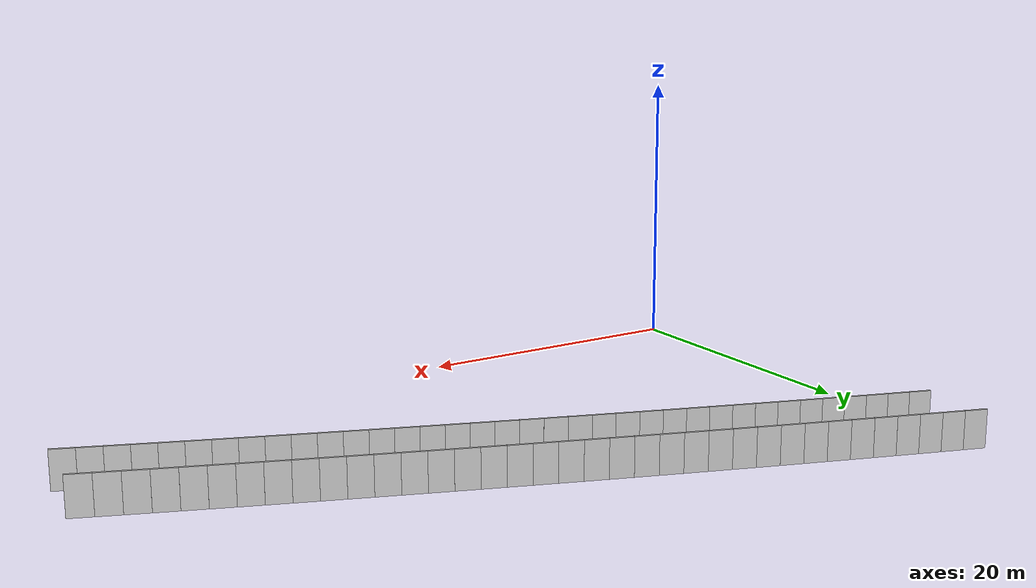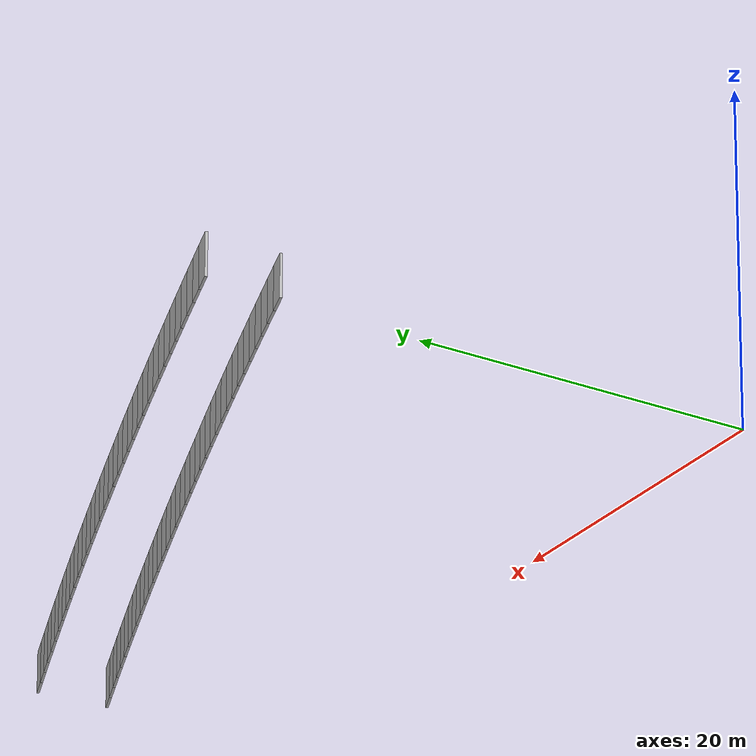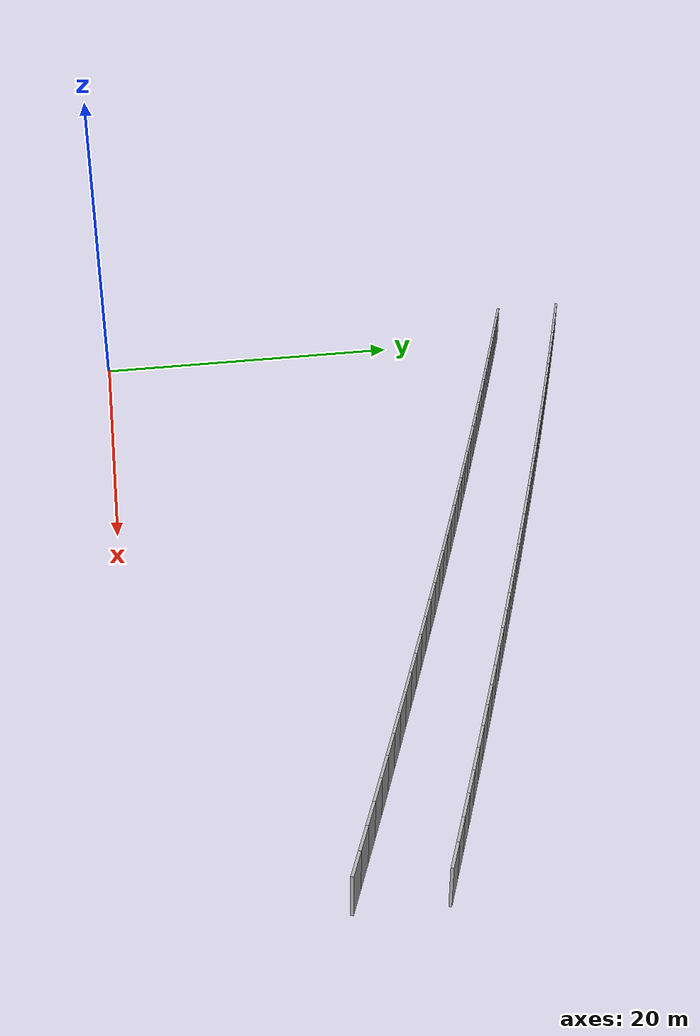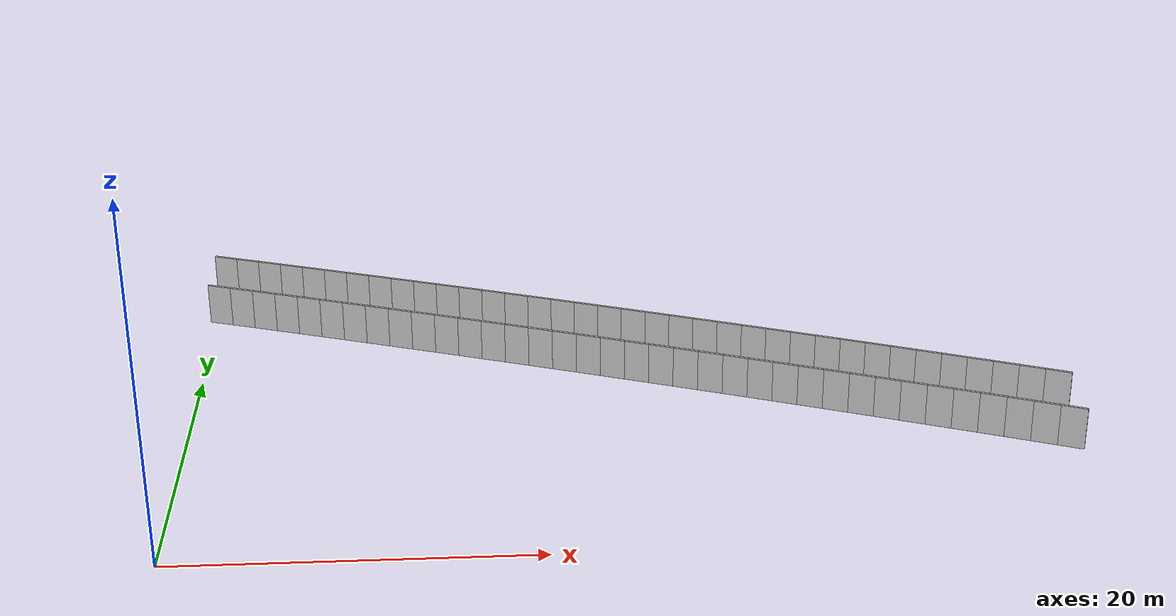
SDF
<?xml version="1.0" ?>
<sdf version="1.6">
  <model name="sps_3345">
    <pose frame="">0 0 0 0 -0 0</pose>
    <static>1</static>
    <self_collide>0</self_collide>
    <allow_auto_disable>0</allow_auto_disable>
    <link name="Wall10667">
      <kinematic>0</kinematic>
      <gravity>1</gravity>
      <self_collide>0</self_collide>
      <collision name="collision">
        <geometry>
          <box>
            <size>1.49636 0.15 2.5</size>
          </box>
        </geometry>
        <pose frame="">0 0 0 0 -0 0</pose>
      </collision>
      <visual name="visual">
        <geometry>
          <box>
            <size>1.49636 0.15 2.5</size>
          </box>
        </geometry>
        <pose frame="">0 0 0 0 -0 0</pose>
        <cast_shadows>1</cast_shadows>
        <transparency>0.0</transparency>
      </visual>
      <pose frame="">49.1837 9.71098 1.25 0 -0 2.75123</pose>
    </link>
    <link name="Wall10668">
      <kinematic>0</kinematic>
      <gravity>1</gravity>
      <self_collide>0</self_collide>
      <collision name="collision">
        <geometry>
          <box>
            <size>1.49665 0.15 2.5</size>
          </box>
        </geometry>
        <pose frame="">0 0 0 0 -0 0</pose>
      </collision>
      <visual name="visual">
        <geometry>
          <box>
            <size>1.49665 0.15 2.5</size>
          </box>
        </geometry>
        <pose frame="">0 0 0 0 -0 0</pose>
        <cast_shadows>1</cast_shadows>
        <transparency>0.0</transparency>
      </visual>
      <pose frame="">47.7993 10.2793 1.25 0 -0 2.7529</pose>
    </link>
    <link name="Wall10669">
      <kinematic>0</kinematic>
      <gravity>1</gravity>
      <self_collide>0</self_collide>
      <collision name="collision">
        <geometry>
          <box>
            <size>1.49656 0.15 2.5</size>
          </box>
        </geometry>
        <pose frame="">0 0 0 0 -0 0</pose>
      </collision>
      <visual name="visual">
        <geometry>
          <box>
            <size>1.49656 0.15 2.5</size>
          </box>
        </geometry>
        <pose frame="">0 0 0 0 -0 0</pose>
        <cast_shadows>1</cast_shadows>
        <transparency>0.0</transparency>
      </visual>
      <pose frame="">46.4139 10.8454 1.25 0 -0 2.75446</pose>
    </link>
    <link name="Wall10670">
      <kinematic>0</kinematic>
      <gravity>1</gravity>
      <self_collide>0</self_collide>
      <collision name="collision">
        <geometry>
          <box>
            <size>1.49653 0.15 2.5</size>
          </box>
        </geometry>
        <pose frame="">0 0 0 0 -0 0</pose>
      </collision>
      <visual name="visual">
        <geometry>
          <box>
            <size>1.49653 0.15 2.5</size>
          </box>
        </geometry>
        <pose frame="">0 0 0 0 -0 0</pose>
        <cast_shadows>1</cast_shadows>
        <transparency>0.0</transparency>
      </visual>
      <pose frame="">45.0277 11.4094 1.25 0 -0 2.75591</pose>
    </link>
    <link name="Wall10671">
      <kinematic>0</kinematic>
      <gravity>1</gravity>
      <self_collide>0</self_collide>
      <collision name="collision">
        <geometry>
          <box>
            <size>1.49637 0.15 2.5</size>
          </box>
        </geometry>
        <pose frame="">0 0 0 0 -0 0</pose>
      </collision>
      <visual name="visual">
        <geometry>
          <box>
            <size>1.49637 0.15 2.5</size>
          </box>
        </geometry>
        <pose frame="">0 0 0 0 -0 0</pose>
        <cast_shadows>1</cast_shadows>
        <transparency>0.0</transparency>
      </visual>
      <pose frame="">43.6407 11.9712 1.25 0 -0 2.75758</pose>
    </link>
    <link name="Wall10672">
      <kinematic>0</kinematic>
      <gravity>1</gravity>
      <self_collide>0</self_collide>
      <collision name="collision">
        <geometry>
          <box>
            <size>1.49668 0.15 2.5</size>
          </box>
        </geometry>
        <pose frame="">0 0 0 0 -0 0</pose>
      </collision>
      <visual name="visual">
        <geometry>
          <box>
            <size>1.49668 0.15 2.5</size>
          </box>
        </geometry>
        <pose frame="">0 0 0 0 -0 0</pose>
        <cast_shadows>1</cast_shadows>
        <transparency>0.0</transparency>
      </visual>
      <pose frame="">42.2527 12.5307 1.25 0 -0 2.75925</pose>
    </link>
    <link name="Wall10673">
      <kinematic>0</kinematic>
      <gravity>1</gravity>
      <self_collide>0</self_collide>
      <collision name="collision">
        <geometry>
          <box>
            <size>1.49638 0.15 2.5</size>
          </box>
        </geometry>
        <pose frame="">0 0 0 0 -0 0</pose>
      </collision>
      <visual name="visual">
        <geometry>
          <box>
            <size>1.49638 0.15 2.5</size>
          </box>
        </geometry>
        <pose frame="">0 0 0 0 -0 0</pose>
        <cast_shadows>1</cast_shadows>
        <transparency>0.0</transparency>
      </visual>
      <pose frame="">40.8639 13.088 1.25 0 -0 2.76075</pose>
    </link>
    <link name="Wall10674">
      <kinematic>0</kinematic>
      <gravity>1</gravity>
      <self_collide>0</self_collide>
      <collision name="collision">
        <geometry>
          <box>
            <size>1.49652 0.15 2.5</size>
          </box>
        </geometry>
        <pose frame="">0 0 0 0 -0 0</pose>
      </collision>
      <visual name="visual">
        <geometry>
          <box>
            <size>1.49652 0.15 2.5</size>
          </box>
        </geometry>
        <pose frame="">0 0 0 0 -0 0</pose>
        <cast_shadows>1</cast_shadows>
        <transparency>0.0</transparency>
      </visual>
      <pose frame="">39.4742 13.6431 1.25 0 -0 2.76237</pose>
    </link>
    <link name="Wall10675">
      <kinematic>0</kinematic>
      <gravity>1</gravity>
      <self_collide>0</self_collide>
      <collision name="collision">
        <geometry>
          <box>
            <size>1.49652 0.15 2.5</size>
          </box>
        </geometry>
        <pose frame="">0 0 0 0 -0 0</pose>
      </collision>
      <visual name="visual">
        <geometry>
          <box>
            <size>1.49652 0.15 2.5</size>
          </box>
        </geometry>
        <pose frame="">0 0 0 0 -0 0</pose>
        <cast_shadows>1</cast_shadows>
        <transparency>0.0</transparency>
      </visual>
      <pose frame="">38.0836 14.1961 1.25 0 -0 2.76381</pose>
    </link>
    <link name="Wall10676">
      <kinematic>0</kinematic>
      <gravity>1</gravity>
      <self_collide>0</self_collide>
      <collision name="collision">
        <geometry>
          <box>
            <size>1.49641 0.15 2.5</size>
          </box>
        </geometry>
        <pose frame="">0 0 0 0 -0 0</pose>
      </collision>
      <visual name="visual">
        <geometry>
          <box>
            <size>1.49641 0.15 2.5</size>
          </box>
        </geometry>
        <pose frame="">0 0 0 0 -0 0</pose>
        <cast_shadows>1</cast_shadows>
        <transparency>0.0</transparency>
      </visual>
      <pose frame="">36.6922 14.7469 1.25 0 -0 2.76554</pose>
    </link>
    <link name="Wall10677">
      <kinematic>0</kinematic>
      <gravity>1</gravity>
      <self_collide>0</self_collide>
      <collision name="collision">
        <geometry>
          <box>
            <size>1.49678 0.15 2.5</size>
          </box>
        </geometry>
        <pose frame="">0 0 0 0 -0 0</pose>
      </collision>
      <visual name="visual">
        <geometry>
          <box>
            <size>1.49678 0.15 2.5</size>
          </box>
        </geometry>
        <pose frame="">0 0 0 0 -0 0</pose>
        <cast_shadows>1</cast_shadows>
        <transparency>0.0</transparency>
      </visual>
      <pose frame="">35.2997 15.2955 1.25 0 -0 2.76704</pose>
    </link>
    <link name="Wall10678">
      <kinematic>0</kinematic>
      <gravity>1</gravity>
      <self_collide>0</self_collide>
      <collision name="collision">
        <geometry>
          <box>
            <size>1.49642 0.15 2.5</size>
          </box>
        </geometry>
        <pose frame="">0 0 0 0 -0 0</pose>
      </collision>
      <visual name="visual">
        <geometry>
          <box>
            <size>1.49642 0.15 2.5</size>
          </box>
        </geometry>
        <pose frame="">0 0 0 0 -0 0</pose>
        <cast_shadows>1</cast_shadows>
        <transparency>0.0</transparency>
      </visual>
      <pose frame="">33.9065 15.8419 1.25 0 -0 2.76865</pose>
    </link>
    <link name="Wall10679">
      <kinematic>0</kinematic>
      <gravity>1</gravity>
      <self_collide>0</self_collide>
      <collision name="collision">
        <geometry>
          <box>
            <size>1.49663 0.15 2.5</size>
          </box>
        </geometry>
        <pose frame="">0 0 0 0 -0 0</pose>
      </collision>
      <visual name="visual">
        <geometry>
          <box>
            <size>1.49663 0.15 2.5</size>
          </box>
        </geometry>
        <pose frame="">0 0 0 0 -0 0</pose>
        <cast_shadows>1</cast_shadows>
        <transparency>0.0</transparency>
      </visual>
      <pose frame="">32.5124 16.3861 1.25 0 -0 2.7702</pose>
    </link>
    <link name="Wall10680">
      <kinematic>0</kinematic>
      <gravity>1</gravity>
      <self_collide>0</self_collide>
      <collision name="collision">
        <geometry>
          <box>
            <size>1.49659 0.15 2.5</size>
          </box>
        </geometry>
        <pose frame="">0 0 0 0 -0 0</pose>
      </collision>
      <visual name="visual">
        <geometry>
          <box>
            <size>1.49659 0.15 2.5</size>
          </box>
        </geometry>
        <pose frame="">0 0 0 0 -0 0</pose>
        <cast_shadows>1</cast_shadows>
        <transparency>0.0</transparency>
      </visual>
      <pose frame="">31.1174 16.9281 1.25 0 -0 2.77185</pose>
    </link>
    <link name="Wall10681">
      <kinematic>0</kinematic>
      <gravity>1</gravity>
      <self_collide>0</self_collide>
      <collision name="collision">
        <geometry>
          <box>
            <size>1.49628 0.15 2.5</size>
          </box>
        </geometry>
        <pose frame="">0 0 0 0 -0 0</pose>
      </collision>
      <visual name="visual">
        <geometry>
          <box>
            <size>1.49628 0.15 2.5</size>
          </box>
        </geometry>
        <pose frame="">0 0 0 0 -0 0</pose>
        <cast_shadows>1</cast_shadows>
        <transparency>0.0</transparency>
      </visual>
      <pose frame="">29.7216 17.4678 1.25 0 -0 2.77339</pose>
    </link>
    <link name="Wall10682">
      <kinematic>0</kinematic>
      <gravity>1</gravity>
      <self_collide>0</self_collide>
      <collision name="collision">
        <geometry>
          <box>
            <size>1.49657 0.15 2.5</size>
          </box>
        </geometry>
        <pose frame="">0 0 0 0 -0 0</pose>
      </collision>
      <visual name="visual">
        <geometry>
          <box>
            <size>1.49657 0.15 2.5</size>
          </box>
        </geometry>
        <pose frame="">0 0 0 0 -0 0</pose>
        <cast_shadows>1</cast_shadows>
        <transparency>0.0</transparency>
      </visual>
      <pose frame="">28.325 18.0052 1.25 0 -0 2.77517</pose>
    </link>
    <link name="Wall10683">
      <kinematic>0</kinematic>
      <gravity>1</gravity>
      <self_collide>0</self_collide>
      <collision name="collision">
        <geometry>
          <box>
            <size>1.49638 0.15 2.5</size>
          </box>
        </geometry>
        <pose frame="">0 0 0 0 -0 0</pose>
      </collision>
      <visual name="visual">
        <geometry>
          <box>
            <size>1.49638 0.15 2.5</size>
          </box>
        </geometry>
        <pose frame="">0 0 0 0 -0 0</pose>
        <cast_shadows>1</cast_shadows>
        <transparency>0.0</transparency>
      </visual>
      <pose frame="">26.9275 18.5404 1.25 0 -0 2.77652</pose>
    </link>
    <link name="Wall10684">
      <kinematic>0</kinematic>
      <gravity>1</gravity>
      <self_collide>0</self_collide>
      <collision name="collision">
        <geometry>
          <box>
            <size>1.49655 0.15 2.5</size>
          </box>
        </geometry>
        <pose frame="">0 0 0 0 -0 0</pose>
      </collision>
      <visual name="visual">
        <geometry>
          <box>
            <size>1.49655 0.15 2.5</size>
          </box>
        </geometry>
        <pose frame="">0 0 0 0 -0 0</pose>
        <cast_shadows>1</cast_shadows>
        <transparency>0.0</transparency>
      </visual>
      <pose frame="">25.5293 19.0735 1.25 0 -0 2.77817</pose>
    </link>
    <link name="Wall10685">
      <kinematic>0</kinematic>
      <gravity>1</gravity>
      <self_collide>0</self_collide>
      <collision name="collision">
        <geometry>
          <box>
            <size>1.49645 0.15 2.5</size>
          </box>
        </geometry>
        <pose frame="">0 0 0 0 -0 0</pose>
      </collision>
      <visual name="visual">
        <geometry>
          <box>
            <size>1.49645 0.15 2.5</size>
          </box>
        </geometry>
        <pose frame="">0 0 0 0 -0 0</pose>
        <cast_shadows>1</cast_shadows>
        <transparency>0.0</transparency>
      </visual>
      <pose frame="">24.1301 19.6043 1.25 0 -0 2.77985</pose>
    </link>
    <link name="Wall10686">
      <kinematic>0</kinematic>
      <gravity>1</gravity>
      <self_collide>0</self_collide>
      <collision name="collision">
        <geometry>
          <box>
            <size>1.49665 0.15 2.5</size>
          </box>
        </geometry>
        <pose frame="">0 0 0 0 -0 0</pose>
      </collision>
      <visual name="visual">
        <geometry>
          <box>
            <size>1.49665 0.15 2.5</size>
          </box>
        </geometry>
        <pose frame="">0 0 0 0 -0 0</pose>
        <cast_shadows>1</cast_shadows>
        <transparency>0.0</transparency>
      </visual>
      <pose frame="">22.73 20.1329 1.25 0 -0 2.78134</pose>
    </link>
    <link name="Wall10687">
      <kinematic>0</kinematic>
      <gravity>1</gravity>
      <self_collide>0</self_collide>
      <collision name="collision">
        <geometry>
          <box>
            <size>1.4965 0.15 2.5</size>
          </box>
        </geometry>
        <pose frame="">0 0 0 0 -0 0</pose>
      </collision>
      <visual name="visual">
        <geometry>
          <box>
            <size>1.4965 0.15 2.5</size>
          </box>
        </geometry>
        <pose frame="">0 0 0 0 -0 0</pose>
        <cast_shadows>1</cast_shadows>
        <transparency>0.0</transparency>
      </visual>
      <pose frame="">21.3291 20.6594 1.25 0 -0 2.78287</pose>
    </link>
    <link name="Wall10688">
      <kinematic>0</kinematic>
      <gravity>1</gravity>
      <self_collide>0</self_collide>
      <collision name="collision">
        <geometry>
          <box>
            <size>1.49636 0.15 2.5</size>
          </box>
        </geometry>
        <pose frame="">0 0 0 0 -0 0</pose>
      </collision>
      <visual name="visual">
        <geometry>
          <box>
            <size>1.49636 0.15 2.5</size>
          </box>
        </geometry>
        <pose frame="">0 0 0 0 -0 0</pose>
        <cast_shadows>1</cast_shadows>
        <transparency>0.0</transparency>
      </visual>
      <pose frame="">19.9275 21.1836 1.25 0 -0 2.78453</pose>
    </link>
    <link name="Wall10689">
      <kinematic>0</kinematic>
      <gravity>1</gravity>
      <self_collide>0</self_collide>
      <collision name="collision">
        <geometry>
          <box>
            <size>1.49663 0.15 2.5</size>
          </box>
        </geometry>
        <pose frame="">0 0 0 0 -0 0</pose>
      </collision>
      <visual name="visual">
        <geometry>
          <box>
            <size>1.49663 0.15 2.5</size>
          </box>
        </geometry>
        <pose frame="">0 0 0 0 -0 0</pose>
        <cast_shadows>1</cast_shadows>
        <transparency>0.0</transparency>
      </visual>
      <pose frame="">18.525 21.7056 1.25 0 -0 2.78603</pose>
    </link>
    <link name="Wall10690">
      <kinematic>0</kinematic>
      <gravity>1</gravity>
      <self_collide>0</self_collide>
      <collision name="collision">
        <geometry>
          <box>
            <size>1.49654 0.15 2.5</size>
          </box>
        </geometry>
        <pose frame="">0 0 0 0 -0 0</pose>
      </collision>
      <visual name="visual">
        <geometry>
          <box>
            <size>1.49654 0.15 2.5</size>
          </box>
        </geometry>
        <pose frame="">0 0 0 0 -0 0</pose>
        <cast_shadows>1</cast_shadows>
        <transparency>0.0</transparency>
      </visual>
      <pose frame="">17.1215 22.2254 1.25 0 -0 2.78771</pose>
    </link>
    <link name="Wall10691">
      <kinematic>0</kinematic>
      <gravity>1</gravity>
      <self_collide>0</self_collide>
      <collision name="collision">
        <geometry>
          <box>
            <size>1.49653 0.15 2.5</size>
          </box>
        </geometry>
        <pose frame="">0 0 0 0 -0 0</pose>
      </collision>
      <visual name="visual">
        <geometry>
          <box>
            <size>1.49653 0.15 2.5</size>
          </box>
        </geometry>
        <pose frame="">0 0 0 0 -0 0</pose>
        <cast_shadows>1</cast_shadows>
        <transparency>0.0</transparency>
      </visual>
      <pose frame="">15.7173 22.7429 1.25 0 -0 2.78927</pose>
    </link>
    <link name="Wall10692">
      <kinematic>0</kinematic>
      <gravity>1</gravity>
      <self_collide>0</self_collide>
      <collision name="collision">
        <geometry>
          <box>
            <size>1.49649 0.15 2.5</size>
          </box>
        </geometry>
        <pose frame="">0 0 0 0 -0 0</pose>
      </collision>
      <visual name="visual">
        <geometry>
          <box>
            <size>1.49649 0.15 2.5</size>
          </box>
        </geometry>
        <pose frame="">0 0 0 0 -0 0</pose>
        <cast_shadows>1</cast_shadows>
        <transparency>0.0</transparency>
      </visual>
      <pose frame="">14.3123 23.2582 1.25 0 -0 2.79087</pose>
    </link>
    <link name="Wall10693">
      <kinematic>0</kinematic>
      <gravity>1</gravity>
      <self_collide>0</self_collide>
      <collision name="collision">
        <geometry>
          <box>
            <size>1.49645 0.15 2.5</size>
          </box>
        </geometry>
        <pose frame="">0 0 0 0 -0 0</pose>
      </collision>
      <visual name="visual">
        <geometry>
          <box>
            <size>1.49645 0.15 2.5</size>
          </box>
        </geometry>
        <pose frame="">0 0 0 0 -0 0</pose>
        <cast_shadows>1</cast_shadows>
        <transparency>0.0</transparency>
      </visual>
      <pose frame="">12.9065 23.7712 1.25 0 -0 2.79251</pose>
    </link>
    <link name="Wall10694">
      <kinematic>0</kinematic>
      <gravity>1</gravity>
      <self_collide>0</self_collide>
      <collision name="collision">
        <geometry>
          <box>
            <size>1.49671 0.15 2.5</size>
          </box>
        </geometry>
        <pose frame="">0 0 0 0 -0 0</pose>
      </collision>
      <visual name="visual">
        <geometry>
          <box>
            <size>1.49671 0.15 2.5</size>
          </box>
        </geometry>
        <pose frame="">0 0 0 0 -0 0</pose>
        <cast_shadows>1</cast_shadows>
        <transparency>0.0</transparency>
      </visual>
      <pose frame="">11.4998 24.282 1.25 0 -0 2.79405</pose>
    </link>
    <link name="Wall10695">
      <kinematic>0</kinematic>
      <gravity>1</gravity>
      <self_collide>0</self_collide>
      <collision name="collision">
        <geometry>
          <box>
            <size>1.49625 0.15 2.5</size>
          </box>
        </geometry>
        <pose frame="">0 0 0 0 -0 0</pose>
      </collision>
      <visual name="visual">
        <geometry>
          <box>
            <size>1.49625 0.15 2.5</size>
          </box>
        </geometry>
        <pose frame="">0 0 0 0 -0 0</pose>
        <cast_shadows>1</cast_shadows>
        <transparency>0.0</transparency>
      </visual>
      <pose frame="">10.0924 24.7906 1.25 0 -0 2.79563</pose>
    </link>
    <link name="Wall10696">
      <kinematic>0</kinematic>
      <gravity>1</gravity>
      <self_collide>0</self_collide>
      <collision name="collision">
        <geometry>
          <box>
            <size>1.49651 0.15 2.5</size>
          </box>
        </geometry>
        <pose frame="">0 0 0 0 -0 0</pose>
      </collision>
      <visual name="visual">
        <geometry>
          <box>
            <size>1.49651 0.15 2.5</size>
          </box>
        </geometry>
        <pose frame="">0 0 0 0 -0 0</pose>
        <cast_shadows>1</cast_shadows>
        <transparency>0.0</transparency>
      </visual>
      <pose frame="">8.68435 25.297 1.25 0 -0 2.79708</pose>
    </link>
    <link name="Wall10697">
      <kinematic>0</kinematic>
      <gravity>1</gravity>
      <self_collide>0</self_collide>
      <collision name="collision">
        <geometry>
          <box>
            <size>1.49649 0.15 2.5</size>
          </box>
        </geometry>
        <pose frame="">0 0 0 0 -0 0</pose>
      </collision>
      <visual name="visual">
        <geometry>
          <box>
            <size>1.49649 0.15 2.5</size>
          </box>
        </geometry>
        <pose frame="">0 0 0 0 -0 0</pose>
        <cast_shadows>1</cast_shadows>
        <transparency>0.0</transparency>
      </visual>
      <pose frame="">7.27535 25.8012 1.25 0 -0 2.7988</pose>
    </link>
    <link name="Wall10698">
      <kinematic>0</kinematic>
      <gravity>1</gravity>
      <self_collide>0</self_collide>
      <collision name="collision">
        <geometry>
          <box>
            <size>1.49667 0.15 2.5</size>
          </box>
        </geometry>
        <pose frame="">0 0 0 0 -0 0</pose>
      </collision>
      <visual name="visual">
        <geometry>
          <box>
            <size>1.49667 0.15 2.5</size>
          </box>
        </geometry>
        <pose frame="">0 0 0 0 -0 0</pose>
        <cast_shadows>1</cast_shadows>
        <transparency>0.0</transparency>
      </visual>
      <pose frame="">5.86544 26.3031 1.25 0 -0 2.80041</pose>
    </link>
    <link name="Wall10699">
      <kinematic>0</kinematic>
      <gravity>1</gravity>
      <self_collide>0</self_collide>
      <collision name="collision">
        <geometry>
          <box>
            <size>1.49651 0.15 2.5</size>
          </box>
        </geometry>
        <pose frame="">0 0 0 0 -0 0</pose>
      </collision>
      <visual name="visual">
        <geometry>
          <box>
            <size>1.49651 0.15 2.5</size>
          </box>
        </geometry>
        <pose frame="">0 0 0 0 -0 0</pose>
        <cast_shadows>1</cast_shadows>
        <transparency>0.0</transparency>
      </visual>
      <pose frame="">4.45473 26.8028 1.25 0 -0 2.80193</pose>
    </link>
    <link name="Wall10700">
      <kinematic>0</kinematic>
      <gravity>1</gravity>
      <self_collide>0</self_collide>
      <collision name="collision">
        <geometry>
          <box>
            <size>1.49647 0.15 2.5</size>
          </box>
        </geometry>
        <pose frame="">0 0 0 0 -0 0</pose>
      </collision>
      <visual name="visual">
        <geometry>
          <box>
            <size>1.49647 0.15 2.5</size>
          </box>
        </geometry>
        <pose frame="">0 0 0 0 -0 0</pose>
        <cast_shadows>1</cast_shadows>
        <transparency>0.0</transparency>
      </visual>
      <pose frame="">3.04336 27.3003 1.25 0 -0 2.80347</pose>
    </link>
    <link name="Wall10701">
      <kinematic>0</kinematic>
      <gravity>1</gravity>
      <self_collide>0</self_collide>
      <collision name="collision">
        <geometry>
          <box>
            <size>1.49655 0.15 2.5</size>
          </box>
        </geometry>
        <pose frame="">0 0 0 0 -0 0</pose>
      </collision>
      <visual name="visual">
        <geometry>
          <box>
            <size>1.49655 0.15 2.5</size>
          </box>
        </geometry>
        <pose frame="">0 0 0 0 -0 0</pose>
        <cast_shadows>1</cast_shadows>
        <transparency>0.0</transparency>
      </visual>
      <pose frame="">1.63116 27.7955 1.25 0 -0 2.80518</pose>
    </link>
    <link name="Wall10702">
      <kinematic>0</kinematic>
      <gravity>1</gravity>
      <self_collide>0</self_collide>
      <collision name="collision">
        <geometry>
          <box>
            <size>1.49652 0.15 2.5</size>
          </box>
        </geometry>
        <pose frame="">0 0 0 0 -0 0</pose>
      </collision>
      <visual name="visual">
        <geometry>
          <box>
            <size>1.49652 0.15 2.5</size>
          </box>
        </geometry>
        <pose frame="">0 0 0 0 -0 0</pose>
        <cast_shadows>1</cast_shadows>
        <transparency>0.0</transparency>
      </visual>
      <pose frame="">0.218131 28.2884 1.25 0 -0 2.80673</pose>
    </link>
    <link name="Wall11265">
      <kinematic>0</kinematic>
      <gravity>1</gravity>
      <self_collide>0</self_collide>
      <collision name="collision">
        <geometry>
          <box>
            <size>1.50317 0.15 2.5</size>
          </box>
        </geometry>
        <pose frame="">0 0 0 0 -0 0</pose>
      </collision>
      <visual name="visual">
        <geometry>
          <box>
            <size>1.50317 0.15 2.5</size>
          </box>
        </geometry>
        <pose frame="">0 0 0 0 -0 0</pose>
        <cast_shadows>1</cast_shadows>
        <transparency>0.0</transparency>
      </visual>
      <pose frame="">49.3682 14.1107 1.25 0 -0 2.75292</pose>
    </link>
    <link name="Wall11266">
      <kinematic>0</kinematic>
      <gravity>1</gravity>
      <self_collide>0</self_collide>
      <collision name="collision">
        <geometry>
          <box>
            <size>1.50306 0.15 2.5</size>
          </box>
        </geometry>
        <pose frame="">0 0 0 0 -0 0</pose>
      </collision>
      <visual name="visual">
        <geometry>
          <box>
            <size>1.50306 0.15 2.5</size>
          </box>
        </geometry>
        <pose frame="">0 0 0 0 -0 0</pose>
        <cast_shadows>1</cast_shadows>
        <transparency>0.0</transparency>
      </visual>
      <pose frame="">47.9767 14.6793 1.25 0 -0 2.75438</pose>
    </link>
    <link name="Wall11267">
      <kinematic>0</kinematic>
      <gravity>1</gravity>
      <self_collide>0</self_collide>
      <collision name="collision">
        <geometry>
          <box>
            <size>1.5029 0.15 2.5</size>
          </box>
        </geometry>
        <pose frame="">0 0 0 0 -0 0</pose>
      </collision>
      <visual name="visual">
        <geometry>
          <box>
            <size>1.5029 0.15 2.5</size>
          </box>
        </geometry>
        <pose frame="">0 0 0 0 -0 0</pose>
        <cast_shadows>1</cast_shadows>
        <transparency>0.0</transparency>
      </visual>
      <pose frame="">46.5846 15.2457 1.25 0 -0 2.75605</pose>
    </link>
    <link name="Wall11268">
      <kinematic>0</kinematic>
      <gravity>1</gravity>
      <self_collide>0</self_collide>
      <collision name="collision">
        <geometry>
          <box>
            <size>1.50313 0.15 2.5</size>
          </box>
        </geometry>
        <pose frame="">0 0 0 0 -0 0</pose>
      </collision>
      <visual name="visual">
        <geometry>
          <box>
            <size>1.50313 0.15 2.5</size>
          </box>
        </geometry>
        <pose frame="">0 0 0 0 -0 0</pose>
        <cast_shadows>1</cast_shadows>
        <transparency>0.0</transparency>
      </visual>
      <pose frame="">45.1915 15.8099 1.25 0 -0 2.75751</pose>
    </link>
    <link name="Wall11269">
      <kinematic>0</kinematic>
      <gravity>1</gravity>
      <self_collide>0</self_collide>
      <collision name="collision">
        <geometry>
          <box>
            <size>1.50295 0.15 2.5</size>
          </box>
        </geometry>
        <pose frame="">0 0 0 0 -0 0</pose>
      </collision>
      <visual name="visual">
        <geometry>
          <box>
            <size>1.50295 0.15 2.5</size>
          </box>
        </geometry>
        <pose frame="">0 0 0 0 -0 0</pose>
        <cast_shadows>1</cast_shadows>
        <transparency>0.0</transparency>
      </visual>
      <pose frame="">43.7974 16.3719 1.25 0 -0 2.75922</pose>
    </link>
    <link name="Wall11270">
      <kinematic>0</kinematic>
      <gravity>1</gravity>
      <self_collide>0</self_collide>
      <collision name="collision">
        <geometry>
          <box>
            <size>1.50304 0.15 2.5</size>
          </box>
        </geometry>
        <pose frame="">0 0 0 0 -0 0</pose>
      </collision>
      <visual name="visual">
        <geometry>
          <box>
            <size>1.50304 0.15 2.5</size>
          </box>
        </geometry>
        <pose frame="">0 0 0 0 -0 0</pose>
        <cast_shadows>1</cast_shadows>
        <transparency>0.0</transparency>
      </visual>
      <pose frame="">42.4025 16.9316 1.25 0 -0 2.76081</pose>
    </link>
    <link name="Wall11271">
      <kinematic>0</kinematic>
      <gravity>1</gravity>
      <self_collide>0</self_collide>
      <collision name="collision">
        <geometry>
          <box>
            <size>1.50326 0.15 2.5</size>
          </box>
        </geometry>
        <pose frame="">0 0 0 0 -0 0</pose>
      </collision>
      <visual name="visual">
        <geometry>
          <box>
            <size>1.50326 0.15 2.5</size>
          </box>
        </geometry>
        <pose frame="">0 0 0 0 -0 0</pose>
        <cast_shadows>1</cast_shadows>
        <transparency>0.0</transparency>
      </visual>
      <pose frame="">41.0066 17.4892 1.25 0 -0 2.76232</pose>
    </link>
    <link name="Wall11272">
      <kinematic>0</kinematic>
      <gravity>1</gravity>
      <self_collide>0</self_collide>
      <collision name="collision">
        <geometry>
          <box>
            <size>1.50289 0.15 2.5</size>
          </box>
        </geometry>
        <pose frame="">0 0 0 0 -0 0</pose>
      </collision>
      <visual name="visual">
        <geometry>
          <box>
            <size>1.50289 0.15 2.5</size>
          </box>
        </geometry>
        <pose frame="">0 0 0 0 -0 0</pose>
        <cast_shadows>1</cast_shadows>
        <transparency>0.0</transparency>
      </visual>
      <pose frame="">39.6099 18.0446 1.25 0 -0 2.76392</pose>
    </link>
    <link name="Wall11273">
      <kinematic>0</kinematic>
      <gravity>1</gravity>
      <self_collide>0</self_collide>
      <collision name="collision">
        <geometry>
          <box>
            <size>1.5033 0.15 2.5</size>
          </box>
        </geometry>
        <pose frame="">0 0 0 0 -0 0</pose>
      </collision>
      <visual name="visual">
        <geometry>
          <box>
            <size>1.5033 0.15 2.5</size>
          </box>
        </geometry>
        <pose frame="">0 0 0 0 -0 0</pose>
        <cast_shadows>1</cast_shadows>
        <transparency>0.0</transparency>
      </visual>
      <pose frame="">38.2124 18.5978 1.25 0 -0 2.76543</pose>
    </link>
    <link name="Wall11274">
      <kinematic>0</kinematic>
      <gravity>1</gravity>
      <self_collide>0</self_collide>
      <collision name="collision">
        <geometry>
          <box>
            <size>1.50298 0.15 2.5</size>
          </box>
        </geometry>
        <pose frame="">0 0 0 0 -0 0</pose>
      </collision>
      <visual name="visual">
        <geometry>
          <box>
            <size>1.50298 0.15 2.5</size>
          </box>
        </geometry>
        <pose frame="">0 0 0 0 -0 0</pose>
        <cast_shadows>1</cast_shadows>
        <transparency>0.0</transparency>
      </visual>
      <pose frame="">36.8139 19.1488 1.25 0 -0 2.76709</pose>
    </link>
    <link name="Wall11275">
      <kinematic>0</kinematic>
      <gravity>1</gravity>
      <self_collide>0</self_collide>
      <collision name="collision">
        <geometry>
          <box>
            <size>1.50306 0.15 2.5</size>
          </box>
        </geometry>
        <pose frame="">0 0 0 0 -0 0</pose>
      </collision>
      <visual name="visual">
        <geometry>
          <box>
            <size>1.50306 0.15 2.5</size>
          </box>
        </geometry>
        <pose frame="">0 0 0 0 -0 0</pose>
        <cast_shadows>1</cast_shadows>
        <transparency>0.0</transparency>
      </visual>
      <pose frame="">35.4146 19.6975 1.25 0 -0 2.76872</pose>
    </link>
    <link name="Wall11276">
      <kinematic>0</kinematic>
      <gravity>1</gravity>
      <self_collide>0</self_collide>
      <collision name="collision">
        <geometry>
          <box>
            <size>1.50308 0.15 2.5</size>
          </box>
        </geometry>
        <pose frame="">0 0 0 0 -0 0</pose>
      </collision>
      <visual name="visual">
        <geometry>
          <box>
            <size>1.50308 0.15 2.5</size>
          </box>
        </geometry>
        <pose frame="">0 0 0 0 -0 0</pose>
        <cast_shadows>1</cast_shadows>
        <transparency>0.0</transparency>
      </visual>
      <pose frame="">34.0144 20.244 1.25 0 -0 2.77026</pose>
    </link>
    <link name="Wall11277">
      <kinematic>0</kinematic>
      <gravity>1</gravity>
      <self_collide>0</self_collide>
      <collision name="collision">
        <geometry>
          <box>
            <size>1.50319 0.15 2.5</size>
          </box>
        </geometry>
        <pose frame="">0 0 0 0 -0 0</pose>
      </collision>
      <visual name="visual">
        <geometry>
          <box>
            <size>1.50319 0.15 2.5</size>
          </box>
        </geometry>
        <pose frame="">0 0 0 0 -0 0</pose>
        <cast_shadows>1</cast_shadows>
        <transparency>0.0</transparency>
      </visual>
      <pose frame="">32.6132 20.7883 1.25 0 -0 2.77185</pose>
    </link>
    <link name="Wall11278">
      <kinematic>0</kinematic>
      <gravity>1</gravity>
      <self_collide>0</self_collide>
      <collision name="collision">
        <geometry>
          <box>
            <size>1.50291 0.15 2.5</size>
          </box>
        </geometry>
        <pose frame="">0 0 0 0 -0 0</pose>
      </collision>
      <visual name="visual">
        <geometry>
          <box>
            <size>1.50291 0.15 2.5</size>
          </box>
        </geometry>
        <pose frame="">0 0 0 0 -0 0</pose>
        <cast_shadows>1</cast_shadows>
        <transparency>0.0</transparency>
      </visual>
      <pose frame="">31.2114 21.3304 1.25 0 -0 2.77335</pose>
    </link>
    <link name="Wall11279">
      <kinematic>0</kinematic>
      <gravity>1</gravity>
      <self_collide>0</self_collide>
      <collision name="collision">
        <geometry>
          <box>
            <size>1.50307 0.15 2.5</size>
          </box>
        </geometry>
        <pose frame="">0 0 0 0 -0 0</pose>
      </collision>
      <visual name="visual">
        <geometry>
          <box>
            <size>1.50307 0.15 2.5</size>
          </box>
        </geometry>
        <pose frame="">0 0 0 0 -0 0</pose>
        <cast_shadows>1</cast_shadows>
        <transparency>0.0</transparency>
      </visual>
      <pose frame="">29.8087 21.8703 1.25 0 -0 2.775</pose>
    </link>
    <link name="Wall11280">
      <kinematic>0</kinematic>
      <gravity>1</gravity>
      <self_collide>0</self_collide>
      <collision name="collision">
        <geometry>
          <box>
            <size>1.50321 0.15 2.5</size>
          </box>
        </geometry>
        <pose frame="">0 0 0 0 -0 0</pose>
      </collision>
      <visual name="visual">
        <geometry>
          <box>
            <size>1.50321 0.15 2.5</size>
          </box>
        </geometry>
        <pose frame="">0 0 0 0 -0 0</pose>
        <cast_shadows>1</cast_shadows>
        <transparency>0.0</transparency>
      </visual>
      <pose frame="">28.405 22.4079 1.25 0 -0 2.77669</pose>
    </link>
    <link name="Wall11281">
      <kinematic>0</kinematic>
      <gravity>1</gravity>
      <self_collide>0</self_collide>
      <collision name="collision">
        <geometry>
          <box>
            <size>1.50292 0.15 2.5</size>
          </box>
        </geometry>
        <pose frame="">0 0 0 0 -0 0</pose>
      </collision>
      <visual name="visual">
        <geometry>
          <box>
            <size>1.50292 0.15 2.5</size>
          </box>
        </geometry>
        <pose frame="">0 0 0 0 -0 0</pose>
        <cast_shadows>1</cast_shadows>
        <transparency>0.0</transparency>
      </visual>
      <pose frame="">27.0004 22.9432 1.25 0 -0 2.77822</pose>
    </link>
    <link name="Wall11282">
      <kinematic>0</kinematic>
      <gravity>1</gravity>
      <self_collide>0</self_collide>
      <collision name="collision">
        <geometry>
          <box>
            <size>1.50311 0.15 2.5</size>
          </box>
        </geometry>
        <pose frame="">0 0 0 0 -0 0</pose>
      </collision>
      <visual name="visual">
        <geometry>
          <box>
            <size>1.50311 0.15 2.5</size>
          </box>
        </geometry>
        <pose frame="">0 0 0 0 -0 0</pose>
        <cast_shadows>1</cast_shadows>
        <transparency>0.0</transparency>
      </visual>
      <pose frame="">25.5951 23.4763 1.25 0 -0 2.77983</pose>
    </link>
    <link name="Wall11283">
      <kinematic>0</kinematic>
      <gravity>1</gravity>
      <self_collide>0</self_collide>
      <collision name="collision">
        <geometry>
          <box>
            <size>1.50311 0.15 2.5</size>
          </box>
        </geometry>
        <pose frame="">0 0 0 0 -0 0</pose>
      </collision>
      <visual name="visual">
        <geometry>
          <box>
            <size>1.50311 0.15 2.5</size>
          </box>
        </geometry>
        <pose frame="">0 0 0 0 -0 0</pose>
        <cast_shadows>1</cast_shadows>
        <transparency>0.0</transparency>
      </visual>
      <pose frame="">24.189 24.0073 1.25 0 -0 2.78122</pose>
    </link>
    <link name="Wall11284">
      <kinematic>0</kinematic>
      <gravity>1</gravity>
      <self_collide>0</self_collide>
      <collision name="collision">
        <geometry>
          <box>
            <size>1.50305 0.15 2.5</size>
          </box>
        </geometry>
        <pose frame="">0 0 0 0 -0 0</pose>
      </collision>
      <visual name="visual">
        <geometry>
          <box>
            <size>1.50305 0.15 2.5</size>
          </box>
        </geometry>
        <pose frame="">0 0 0 0 -0 0</pose>
        <cast_shadows>1</cast_shadows>
        <transparency>0.0</transparency>
      </visual>
      <pose frame="">22.782 24.5361 1.25 0 -0 2.78294</pose>
    </link>
    <link name="Wall11285">
      <kinematic>0</kinematic>
      <gravity>1</gravity>
      <self_collide>0</self_collide>
      <collision name="collision">
        <geometry>
          <box>
            <size>1.50302 0.15 2.5</size>
          </box>
        </geometry>
        <pose frame="">0 0 0 0 -0 0</pose>
      </collision>
      <visual name="visual">
        <geometry>
          <box>
            <size>1.50302 0.15 2.5</size>
          </box>
        </geometry>
        <pose frame="">0 0 0 0 -0 0</pose>
        <cast_shadows>1</cast_shadows>
        <transparency>0.0</transparency>
      </visual>
      <pose frame="">21.3742 25.0626 1.25 0 -0 2.78449</pose>
    </link>
    <link name="Wall11286">
      <kinematic>0</kinematic>
      <gravity>1</gravity>
      <self_collide>0</self_collide>
      <collision name="collision">
        <geometry>
          <box>
            <size>1.50323 0.15 2.5</size>
          </box>
        </geometry>
        <pose frame="">0 0 0 0 -0 0</pose>
      </collision>
      <visual name="visual">
        <geometry>
          <box>
            <size>1.50323 0.15 2.5</size>
          </box>
        </geometry>
        <pose frame="">0 0 0 0 -0 0</pose>
        <cast_shadows>1</cast_shadows>
        <transparency>0.0</transparency>
      </visual>
      <pose frame="">19.9654 25.5869 1.25 0 -0 2.78611</pose>
    </link>
    <link name="Wall11287">
      <kinematic>0</kinematic>
      <gravity>1</gravity>
      <self_collide>0</self_collide>
      <collision name="collision">
        <geometry>
          <box>
            <size>1.50292 0.15 2.5</size>
          </box>
        </geometry>
        <pose frame="">0 0 0 0 -0 0</pose>
      </collision>
      <visual name="visual">
        <geometry>
          <box>
            <size>1.50292 0.15 2.5</size>
          </box>
        </geometry>
        <pose frame="">0 0 0 0 -0 0</pose>
        <cast_shadows>1</cast_shadows>
        <transparency>0.0</transparency>
      </visual>
      <pose frame="">18.5559 26.1089 1.25 0 -0 2.78772</pose>
    </link>
    <link name="Wall11288">
      <kinematic>0</kinematic>
      <gravity>1</gravity>
      <self_collide>0</self_collide>
      <collision name="collision">
        <geometry>
          <box>
            <size>1.50313 0.15 2.5</size>
          </box>
        </geometry>
        <pose frame="">0 0 0 0 -0 0</pose>
      </collision>
      <visual name="visual">
        <geometry>
          <box>
            <size>1.50313 0.15 2.5</size>
          </box>
        </geometry>
        <pose frame="">0 0 0 0 -0 0</pose>
        <cast_shadows>1</cast_shadows>
        <transparency>0.0</transparency>
      </visual>
      <pose frame="">17.1457 26.6287 1.25 0 -0 2.7892</pose>
    </link>
    <link name="Wall11289">
      <kinematic>0</kinematic>
      <gravity>1</gravity>
      <self_collide>0</self_collide>
      <collision name="collision">
        <geometry>
          <box>
            <size>1.50295 0.15 2.5</size>
          </box>
        </geometry>
        <pose frame="">0 0 0 0 -0 0</pose>
      </collision>
      <visual name="visual">
        <geometry>
          <box>
            <size>1.50295 0.15 2.5</size>
          </box>
        </geometry>
        <pose frame="">0 0 0 0 -0 0</pose>
        <cast_shadows>1</cast_shadows>
        <transparency>0.0</transparency>
      </visual>
      <pose frame="">15.7345 27.1463 1.25 0 -0 2.79084</pose>
    </link>
    <link name="Wall11290">
      <kinematic>0</kinematic>
      <gravity>1</gravity>
      <self_collide>0</self_collide>
      <collision name="collision">
        <geometry>
          <box>
            <size>1.50305 0.15 2.5</size>
          </box>
        </geometry>
        <pose frame="">0 0 0 0 -0 0</pose>
      </collision>
      <visual name="visual">
        <geometry>
          <box>
            <size>1.50305 0.15 2.5</size>
          </box>
        </geometry>
        <pose frame="">0 0 0 0 -0 0</pose>
        <cast_shadows>1</cast_shadows>
        <transparency>0.0</transparency>
      </visual>
      <pose frame="">14.3227 27.6616 1.25 0 -0 2.79242</pose>
    </link>
    <link name="Wall11291">
      <kinematic>0</kinematic>
      <gravity>1</gravity>
      <self_collide>0</self_collide>
      <collision name="collision">
        <geometry>
          <box>
            <size>1.50302 0.15 2.5</size>
          </box>
        </geometry>
        <pose frame="">0 0 0 0 -0 0</pose>
      </collision>
      <visual name="visual">
        <geometry>
          <box>
            <size>1.50302 0.15 2.5</size>
          </box>
        </geometry>
        <pose frame="">0 0 0 0 -0 0</pose>
        <cast_shadows>1</cast_shadows>
        <transparency>0.0</transparency>
      </visual>
      <pose frame="">12.9099 28.1746 1.25 0 -0 2.79414</pose>
    </link>
    <link name="Wall11292">
      <kinematic>0</kinematic>
      <gravity>1</gravity>
      <self_collide>0</self_collide>
      <collision name="collision">
        <geometry>
          <box>
            <size>1.5031 0.15 2.5</size>
          </box>
        </geometry>
        <pose frame="">0 0 0 0 -0 0</pose>
      </collision>
      <visual name="visual">
        <geometry>
          <box>
            <size>1.5031 0.15 2.5</size>
          </box>
        </geometry>
        <pose frame="">0 0 0 0 -0 0</pose>
        <cast_shadows>1</cast_shadows>
        <transparency>0.0</transparency>
      </visual>
      <pose frame="">11.4963 28.6854 1.25 0 -0 2.79554</pose>
    </link>
    <link name="Wall11293">
      <kinematic>0</kinematic>
      <gravity>1</gravity>
      <self_collide>0</self_collide>
      <collision name="collision">
        <geometry>
          <box>
            <size>1.50309 0.15 2.5</size>
          </box>
        </geometry>
        <pose frame="">0 0 0 0 -0 0</pose>
      </collision>
      <visual name="visual">
        <geometry>
          <box>
            <size>1.50309 0.15 2.5</size>
          </box>
        </geometry>
        <pose frame="">0 0 0 0 -0 0</pose>
        <cast_shadows>1</cast_shadows>
        <transparency>0.0</transparency>
      </visual>
      <pose frame="">10.0819 29.1941 1.25 0 -0 2.79714</pose>
    </link>
    <link name="Wall11294">
      <kinematic>0</kinematic>
      <gravity>1</gravity>
      <self_collide>0</self_collide>
      <collision name="collision">
        <geometry>
          <box>
            <size>1.50326 0.15 2.5</size>
          </box>
        </geometry>
        <pose frame="">0 0 0 0 -0 0</pose>
      </collision>
      <visual name="visual">
        <geometry>
          <box>
            <size>1.50326 0.15 2.5</size>
          </box>
        </geometry>
        <pose frame="">0 0 0 0 -0 0</pose>
        <cast_shadows>1</cast_shadows>
        <transparency>0.0</transparency>
      </visual>
      <pose frame="">8.66656 29.7005 1.25 0 -0 2.79886</pose>
    </link>
    <link name="Wall11295">
      <kinematic>0</kinematic>
      <gravity>1</gravity>
      <self_collide>0</self_collide>
      <collision name="collision">
        <geometry>
          <box>
            <size>1.50287 0.15 2.5</size>
          </box>
        </geometry>
        <pose frame="">0 0 0 0 -0 0</pose>
      </collision>
      <visual name="visual">
        <geometry>
          <box>
            <size>1.50287 0.15 2.5</size>
          </box>
        </geometry>
        <pose frame="">0 0 0 0 -0 0</pose>
        <cast_shadows>1</cast_shadows>
        <transparency>0.0</transparency>
      </visual>
      <pose frame="">7.25054 30.2046 1.25 0 -0 2.80032</pose>
    </link>
    <link name="Wall11296">
      <kinematic>0</kinematic>
      <gravity>1</gravity>
      <self_collide>0</self_collide>
      <collision name="collision">
        <geometry>
          <box>
            <size>1.50306 0.15 2.5</size>
          </box>
        </geometry>
        <pose frame="">0 0 0 0 -0 0</pose>
      </collision>
      <visual name="visual">
        <geometry>
          <box>
            <size>1.50306 0.15 2.5</size>
          </box>
        </geometry>
        <pose frame="">0 0 0 0 -0 0</pose>
        <cast_shadows>1</cast_shadows>
        <transparency>0.0</transparency>
      </visual>
      <pose frame="">5.83385 30.7065 1.25 0 -0 2.80191</pose>
    </link>
    <link name="Wall11297">
      <kinematic>0</kinematic>
      <gravity>1</gravity>
      <self_collide>0</self_collide>
      <collision name="collision">
        <geometry>
          <box>
            <size>1.50315 0.15 2.5</size>
          </box>
        </geometry>
        <pose frame="">0 0 0 0 -0 0</pose>
      </collision>
      <visual name="visual">
        <geometry>
          <box>
            <size>1.50315 0.15 2.5</size>
          </box>
        </geometry>
        <pose frame="">0 0 0 0 -0 0</pose>
        <cast_shadows>1</cast_shadows>
        <transparency>0.0</transparency>
      </visual>
      <pose frame="">4.41625 31.2062 1.25 0 -0 2.80344</pose>
    </link>
    <link name="Wall11298">
      <kinematic>0</kinematic>
      <gravity>1</gravity>
      <self_collide>0</self_collide>
      <collision name="collision">
        <geometry>
          <box>
            <size>1.50302 0.15 2.5</size>
          </box>
        </geometry>
        <pose frame="">0 0 0 0 -0 0</pose>
      </collision>
      <visual name="visual">
        <geometry>
          <box>
            <size>1.50302 0.15 2.5</size>
          </box>
        </geometry>
        <pose frame="">0 0 0 0 -0 0</pose>
        <cast_shadows>1</cast_shadows>
        <transparency>0.0</transparency>
      </visual>
      <pose frame="">2.99786 31.7036 1.25 0 -0 2.80518</pose>
    </link>
    <link name="Wall11299">
      <kinematic>0</kinematic>
      <gravity>1</gravity>
      <self_collide>0</self_collide>
      <collision name="collision">
        <geometry>
          <box>
            <size>1.50312 0.15 2.5</size>
          </box>
        </geometry>
        <pose frame="">0 0 0 0 -0 0</pose>
      </collision>
      <visual name="visual">
        <geometry>
          <box>
            <size>1.50312 0.15 2.5</size>
          </box>
        </geometry>
        <pose frame="">0 0 0 0 -0 0</pose>
        <cast_shadows>1</cast_shadows>
        <transparency>0.0</transparency>
      </visual>
      <pose frame="">1.57867 32.1987 1.25 0 -0 2.80671</pose>
    </link>
    <link name="Wall11300">
      <kinematic>0</kinematic>
      <gravity>1</gravity>
      <self_collide>0</self_collide>
      <collision name="collision">
        <geometry>
          <box>
            <size>1.50307 0.15 2.5</size>
          </box>
        </geometry>
        <pose frame="">0 0 0 0 -0 0</pose>
      </collision>
      <visual name="visual">
        <geometry>
          <box>
            <size>1.50307 0.15 2.5</size>
          </box>
        </geometry>
        <pose frame="">0 0 0 0 -0 0</pose>
        <cast_shadows>1</cast_shadows>
        <transparency>0.0</transparency>
      </visual>
      <pose frame="">0.158653 32.6915 1.25 0 -0 2.80841</pose>
    </link>
  </model>
</sdf>
